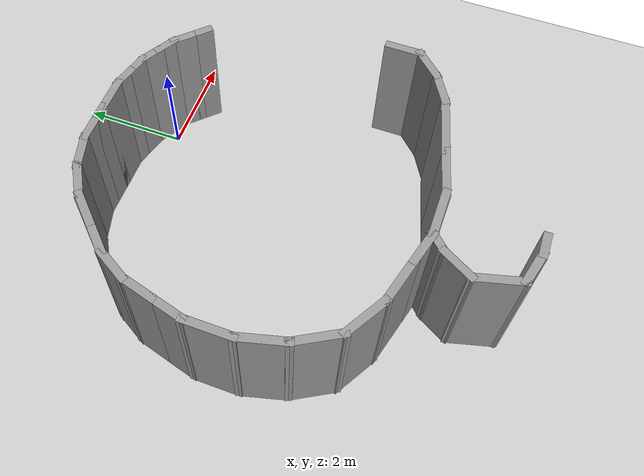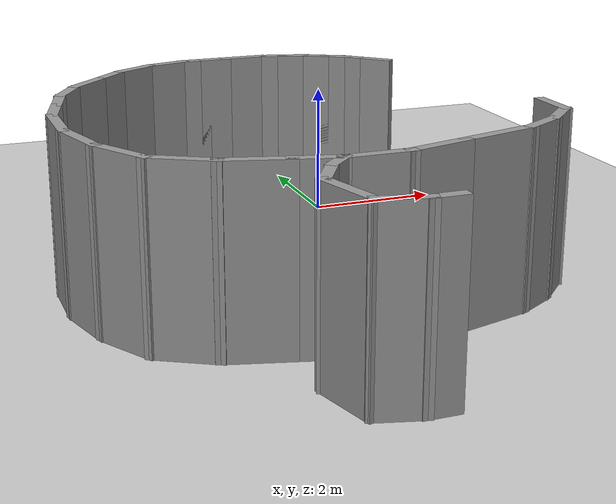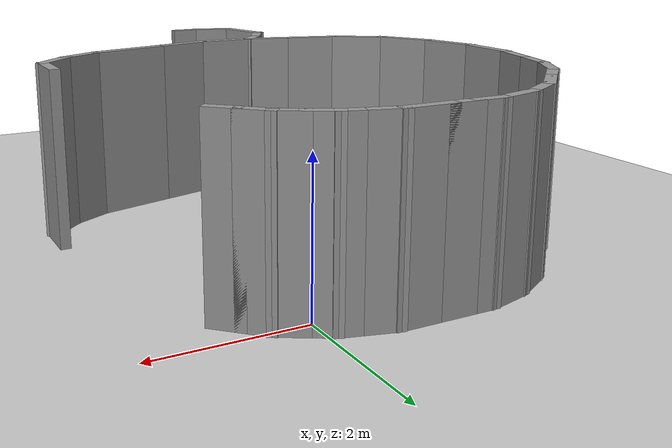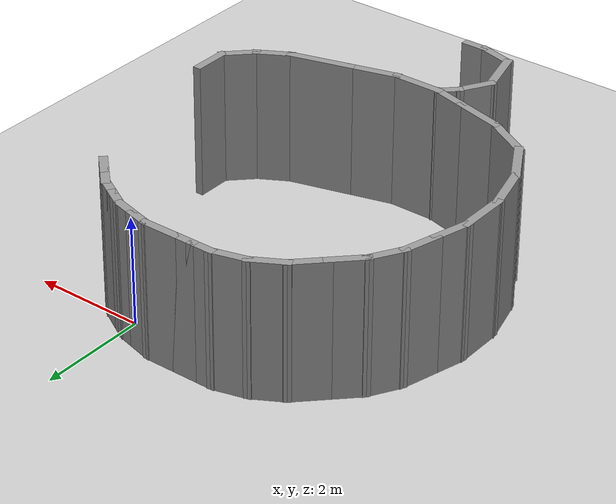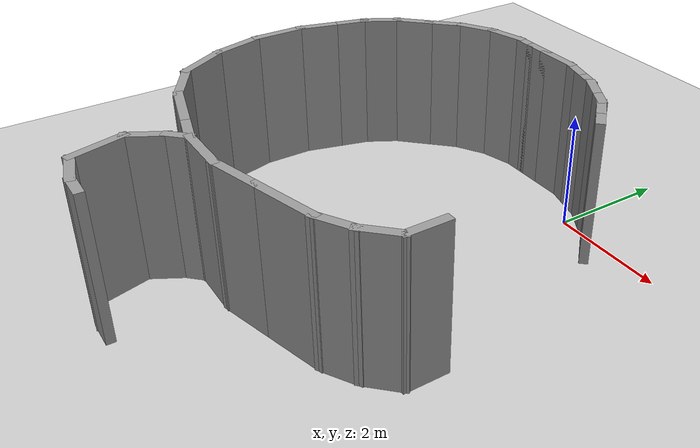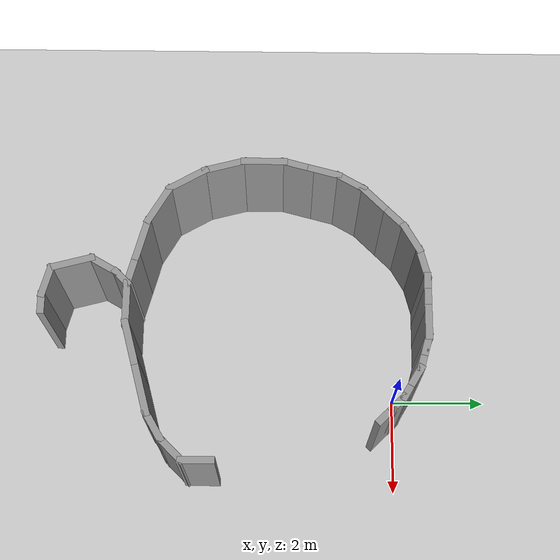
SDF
<?xml version="1.0" ?>
<sdf version="1.5">
  <world name="default">
    <!-- A global light source -->
    <include>
      <uri>model://sun</uri>
    </include>
    <!-- A ground plane -->
    <include>
      <uri>model://ground_plane</uri>
    </include>

    <include>
        <uri>model://walls</uri>
    </include>

    <physics name="ode_70iters" type="ode">
      <real_time_update_rate>1500</real_time_update_rate>
      <ode>
        <solver>
          <type>quick</type>
          <iters>70</iters>
        </solver>
      </ode>
    </physics>
  </world>
</sdf>

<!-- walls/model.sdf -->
<sdf version='1.7'>
  <model name='walls'>
    <pose>-1.4146 -3.41675 0 0 -0 0</pose>
    <link name='Wall_1'>
      <collision name='Wall_1_Collision'>
        <geometry>
          <box>
            <size>0.5 0.15 2.5</size>
          </box>
        </geometry>
        <pose>0 0 1.25 0 -0 0</pose>
      </collision>
      <visual name='Wall_1_Visual'>
        <pose>0 0 1.25 0 -0 0</pose>
        <geometry>
          <box>
            <size>0.5 0.15 2.5</size>
          </box>
        </geometry>
        <material>
          <script>
            <uri>file://media/materials/scripts/gazebo.material</uri>
            <name>Gazebo/Grey</name>
          </script>
          <ambient>1 1 1 1</ambient>
        </material>
        <meta>
          <layer>0</layer>
        </meta>
      </visual>
      <pose>-0.503396 3.96671 0 0 -0 0</pose>
    </link>
    <link name='Wall_11'>
      <collision name='Wall_11_Collision'>
        <geometry>
          <box>
            <size>0.75 0.15 2.5</size>
          </box>
        </geometry>
        <pose>0 0 1.25 0 -0 0</pose>
      </collision>
      <visual name='Wall_11_Visual'>
        <pose>0 0 1.25 0 -0 0</pose>
        <geometry>
          <box>
            <size>0.75 0.15 2.5</size>
          </box>
        </geometry>
        <material>
          <script>
            <uri>file://media/materials/scripts/gazebo.material</uri>
            <name>Gazebo/Grey</name>
          </script>
          <ambient>1 1 1 1</ambient>
        </material>
        <meta>
          <layer>0</layer>
        </meta>
      </visual>
      <pose>-0.968174 3.88907 0 0 -0 -2.87979</pose>
    </link>
    <link name='Wall_12'>
      <collision name='Wall_12_Collision'>
        <geometry>
          <box>
            <size>0.75 0.15 2.5</size>
          </box>
        </geometry>
        <pose>0 0 1.25 0 -0 0</pose>
      </collision>
      <visual name='Wall_12_Visual'>
        <pose>0 0 1.25 0 -0 0</pose>
        <geometry>
          <box>
            <size>0.75 0.15 2.5</size>
          </box>
        </geometry>
        <material>
          <script>
            <uri>file://media/materials/scripts/gazebo.material</uri>
            <name>Gazebo/Grey</name>
          </script>
          <ambient>1 1 1 1</ambient>
        </material>
        <meta>
          <layer>0</layer>
        </meta>
      </visual>
      <pose>-1.51776 3.66142 0 0 -0 -2.61799</pose>
    </link>
    <link name='Wall_13'>
      <collision name='Wall_13_Collision'>
        <geometry>
          <box>
            <size>0.75 0.15 2.5</size>
          </box>
        </geometry>
        <pose>0 0 1.25 0 -0 0</pose>
      </collision>
      <visual name='Wall_13_Visual'>
        <pose>0 0 1.25 0 -0 0</pose>
        <geometry>
          <box>
            <size>0.75 0.15 2.5</size>
          </box>
        </geometry>
        <material>
          <script>
            <uri>file://media/materials/scripts/gazebo.material</uri>
            <name>Gazebo/Grey</name>
          </script>
          <ambient>1 1 1 1</ambient>
        </material>
        <meta>
          <layer>0</layer>
        </meta>
      </visual>
      <pose>-1.9897 3.29929 0 0 -0 -2.35619</pose>
    </link>
    <link name='Wall_14'>
      <collision name='Wall_14_Collision'>
        <geometry>
          <box>
            <size>0.75 0.15 2.5</size>
          </box>
        </geometry>
        <pose>0 0 1.25 0 -0 0</pose>
      </collision>
      <visual name='Wall_14_Visual'>
        <pose>0 0 1.25 0 -0 0</pose>
        <geometry>
          <box>
            <size>0.75 0.15 2.5</size>
          </box>
        </geometry>
        <material>
          <script>
            <uri>file://media/materials/scripts/gazebo.material</uri>
            <name>Gazebo/Grey</name>
          </script>
          <ambient>1 1 1 1</ambient>
        </material>
        <meta>
          <layer>0</layer>
        </meta>
      </visual>
      <pose>-2.41396 2.87502 0 0 -0 -2.35619</pose>
    </link>
    <link name='Wall_15'>
      <collision name='Wall_15_Collision'>
        <geometry>
          <box>
            <size>0.75 0.15 2.5</size>
          </box>
        </geometry>
        <pose>0 0 1.25 0 -0 0</pose>
      </collision>
      <visual name='Wall_15_Visual'>
        <pose>0 0 1.25 0 -0 0</pose>
        <geometry>
          <box>
            <size>0.75 0.15 2.5</size>
          </box>
        </geometry>
        <material>
          <script>
            <uri>file://media/materials/scripts/gazebo.material</uri>
            <name>Gazebo/Grey</name>
          </script>
          <ambient>1 1 1 1</ambient>
        </material>
        <meta>
          <layer>0</layer>
        </meta>
      </visual>
      <pose>-2.7761 2.40308 0 0 -0 -2.0944</pose>
    </link>
    <link name='Wall_16'>
      <collision name='Wall_16_Collision'>
        <geometry>
          <box>
            <size>0.75 0.15 2.5</size>
          </box>
        </geometry>
        <pose>0 0 1.25 0 -0 0</pose>
      </collision>
      <visual name='Wall_16_Visual'>
        <pose>0 0 1.25 0 -0 0</pose>
        <geometry>
          <box>
            <size>0.75 0.15 2.5</size>
          </box>
        </geometry>
        <material>
          <script>
            <uri>file://media/materials/scripts/gazebo.material</uri>
            <name>Gazebo/Grey</name>
          </script>
          <ambient>1 1 1 1</ambient>
        </material>
        <meta>
          <layer>0</layer>
        </meta>
      </visual>
      <pose>-3.00374 1.8535 0 0 -0 -1.8326</pose>
    </link>
    <link name='Wall_17'>
      <collision name='Wall_17_Collision'>
        <geometry>
          <box>
            <size>0.75 0.15 2.5</size>
          </box>
        </geometry>
        <pose>0 0 1.25 0 -0 0</pose>
      </collision>
      <visual name='Wall_17_Visual'>
        <pose>0 0 1.25 0 -0 0</pose>
        <geometry>
          <box>
            <size>0.75 0.15 2.5</size>
          </box>
        </geometry>
        <material>
          <script>
            <uri>file://media/materials/scripts/gazebo.material</uri>
            <name>Gazebo/Grey</name>
          </script>
          <ambient>1 1 1 1</ambient>
        </material>
        <meta>
          <layer>0</layer>
        </meta>
      </visual>
      <pose>-3.15903 1.27394 0 0 -0 -1.8326</pose>
    </link>
    <link name='Wall_18'>
      <collision name='Wall_18_Collision'>
        <geometry>
          <box>
            <size>1 0.15 2.5</size>
          </box>
        </geometry>
        <pose>0 0 1.25 0 -0 0</pose>
      </collision>
      <visual name='Wall_18_Visual'>
        <pose>0 0 1.25 0 -0 0</pose>
        <geometry>
          <box>
            <size>1 0.15 2.5</size>
          </box>
        </geometry>
        <material>
          <script>
            <uri>file://media/materials/scripts/gazebo.material</uri>
            <name>Gazebo/Grey</name>
          </script>
          <ambient>1 1 1 1</ambient>
        </material>
        <meta>
          <layer>0</layer>
        </meta>
      </visual>
      <pose>-3.23668 0.559166 0 0 -0 -1.5708</pose>
    </link>
    <link name='Wall_19'>
      <collision name='Wall_19_Collision'>
        <geometry>
          <box>
            <size>1 0.15 2.5</size>
          </box>
        </geometry>
        <pose>0 0 1.25 0 -0 0</pose>
      </collision>
      <visual name='Wall_19_Visual'>
        <pose>0 0 1.25 0 -0 0</pose>
        <geometry>
          <box>
            <size>1 0.15 2.5</size>
          </box>
        </geometry>
        <material>
          <script>
            <uri>file://media/materials/scripts/gazebo.material</uri>
            <name>Gazebo/Grey</name>
          </script>
          <ambient>1 1 1 1</ambient>
        </material>
        <meta>
          <layer>0</layer>
        </meta>
      </visual>
      <pose>-3.12668 -0.276353 0 0 -0 -1.309</pose>
    </link>
    <link name='Wall_2'>
      <collision name='Wall_2_Collision'>
        <geometry>
          <box>
            <size>0.5 0.15 2.5</size>
          </box>
        </geometry>
        <pose>0 0 1.25 0 -0 0</pose>
      </collision>
      <visual name='Wall_2_Visual'>
        <pose>0 0 1.25 0 -0 0</pose>
        <geometry>
          <box>
            <size>0.5 0.15 2.5</size>
          </box>
        </geometry>
        <material>
          <script>
            <uri>file://media/materials/scripts/gazebo.material</uri>
            <name>Gazebo/Grey</name>
          </script>
          <ambient>1 1 1 1</ambient>
        </material>
        <meta>
          <layer>0</layer>
        </meta>
      </visual>
      <pose>-0.153396 3.96671 0 0 -0 0</pose>
    </link>
    <link name='Wall_20'>
      <collision name='Wall_20_Collision'>
        <geometry>
          <box>
            <size>1 0.15 2.5</size>
          </box>
        </geometry>
        <pose>0 0 1.25 0 -0 0</pose>
      </collision>
      <visual name='Wall_20_Visual'>
        <pose>0 0 1.25 0 -0 0</pose>
        <geometry>
          <box>
            <size>1 0.15 2.5</size>
          </box>
        </geometry>
        <material>
          <script>
            <uri>file://media/materials/scripts/gazebo.material</uri>
            <name>Gazebo/Grey</name>
          </script>
          <ambient>1 1 1 1</ambient>
        </material>
        <meta>
          <layer>0</layer>
        </meta>
      </visual>
      <pose>-2.80418 -1.05493 0 0 -0 -1.0472</pose>
    </link>
    <link name='Wall_21'>
      <collision name='Wall_21_Collision'>
        <geometry>
          <box>
            <size>1 0.15 2.5</size>
          </box>
        </geometry>
        <pose>0 0 1.25 0 -0 0</pose>
      </collision>
      <visual name='Wall_21_Visual'>
        <pose>0 0 1.25 0 -0 0</pose>
        <geometry>
          <box>
            <size>1 0.15 2.5</size>
          </box>
        </geometry>
        <material>
          <script>
            <uri>file://media/materials/scripts/gazebo.material</uri>
            <name>Gazebo/Grey</name>
          </script>
          <ambient>1 1 1 1</ambient>
        </material>
        <meta>
          <layer>0</layer>
        </meta>
      </visual>
      <pose>-2.22362 -1.63549 0 0 -0 -0.523599</pose>
    </link>
    <link name='Wall_22'>
      <collision name='Wall_22_Collision'>
        <geometry>
          <box>
            <size>1 0.15 2.5</size>
          </box>
        </geometry>
        <pose>0 0 1.25 0 -0 0</pose>
      </collision>
      <visual name='Wall_22_Visual'>
        <pose>0 0 1.25 0 -0 0</pose>
        <geometry>
          <box>
            <size>1 0.15 2.5</size>
          </box>
        </geometry>
        <material>
          <script>
            <uri>file://media/materials/scripts/gazebo.material</uri>
            <name>Gazebo/Grey</name>
          </script>
          <ambient>1 1 1 1</ambient>
        </material>
        <meta>
          <layer>0</layer>
        </meta>
      </visual>
      <pose>-1.44504 -1.95799 0 0 -0 -0.261799</pose>
    </link>
    <link name='Wall_23'>
      <collision name='Wall_23_Collision'>
        <geometry>
          <box>
            <size>0.75 0.15 2.5</size>
          </box>
        </geometry>
        <pose>0 0 1.25 0 -0 0</pose>
      </collision>
      <visual name='Wall_23_Visual'>
        <pose>0 0 1.25 0 -0 0</pose>
        <geometry>
          <box>
            <size>0.75 0.15 2.5</size>
          </box>
        </geometry>
        <material>
          <script>
            <uri>file://media/materials/scripts/gazebo.material</uri>
            <name>Gazebo/Grey</name>
          </script>
          <ambient>1 1 1 1</ambient>
        </material>
        <meta>
          <layer>0</layer>
        </meta>
      </visual>
      <pose>-0.744745 -2.14563 0 0 -0 -0.261799</pose>
    </link>
    <link name='Wall_24'>
      <collision name='Wall_24_Collision'>
        <geometry>
          <box>
            <size>1 0.15 2.5</size>
          </box>
        </geometry>
        <pose>0 0 1.25 0 -0 0</pose>
      </collision>
      <visual name='Wall_24_Visual'>
        <pose>0 0 1.25 0 -0 0</pose>
        <geometry>
          <box>
            <size>1 0.15 2.5</size>
          </box>
        </geometry>
        <material>
          <script>
            <uri>file://media/materials/scripts/gazebo.material</uri>
            <name>Gazebo/Grey</name>
          </script>
          <ambient>1 1 1 1</ambient>
        </material>
        <meta>
          <layer>0</layer>
        </meta>
      </visual>
      <pose>-0.029967 -2.22328 0 0 -0 0</pose>
    </link>
    <link name='Wall_25'>
      <collision name='Wall_25_Collision'>
        <geometry>
          <box>
            <size>1 0.15 2.5</size>
          </box>
        </geometry>
        <pose>0 0 1.25 0 -0 0</pose>
      </collision>
      <visual name='Wall_25_Visual'>
        <pose>0 0 1.25 0 -0 0</pose>
        <geometry>
          <box>
            <size>1 0.15 2.5</size>
          </box>
        </geometry>
        <material>
          <script>
            <uri>file://media/materials/scripts/gazebo.material</uri>
            <name>Gazebo/Grey</name>
          </script>
          <ambient>1 1 1 1</ambient>
        </material>
        <meta>
          <layer>0</layer>
        </meta>
      </visual>
      <pose>0.805551 -2.11328 0 0 -0 0.261799</pose>
    </link>
    <link name='Wall_26'>
      <collision name='Wall_26_Collision'>
        <geometry>
          <box>
            <size>1.25 0.15 2.5</size>
          </box>
        </geometry>
        <pose>0 0 1.25 0 -0 0</pose>
      </collision>
      <visual name='Wall_26_Visual'>
        <pose>0 0 1.25 0 -0 0</pose>
        <geometry>
          <box>
            <size>1.25 0.15 2.5</size>
          </box>
        </geometry>
        <material>
          <script>
            <uri>file://media/materials/scripts/gazebo.material</uri>
            <name>Gazebo/Grey</name>
          </script>
          <ambient>1 1 1 1</ambient>
        </material>
        <meta>
          <layer>0</layer>
        </meta>
      </visual>
      <pose>1.74733 -1.86093 0 0 -0 0.261799</pose>
    </link>
    <link name='Wall_27'>
      <collision name='Wall_27_Collision'>
        <geometry>
          <box>
            <size>0.75 0.15 2.5</size>
          </box>
        </geometry>
        <pose>0 0 1.25 0 -0 0</pose>
      </collision>
      <visual name='Wall_27_Visual'>
        <pose>0 0 1.25 0 -0 0</pose>
        <geometry>
          <box>
            <size>0.75 0.15 2.5</size>
          </box>
        </geometry>
        <material>
          <script>
            <uri>file://media/materials/scripts/gazebo.material</uri>
            <name>Gazebo/Grey</name>
          </script>
          <ambient>1 1 1 1</ambient>
        </material>
        <meta>
          <layer>0</layer>
        </meta>
      </visual>
      <pose>2.5384 -1.56858 0 0 -0 0.523599</pose>
    </link>
    <link name='Wall_28'>
      <collision name='Wall_28_Collision'>
        <geometry>
          <box>
            <size>0.75 0.15 2.5</size>
          </box>
        </geometry>
        <pose>0 0 1.25 0 -0 0</pose>
      </collision>
      <visual name='Wall_28_Visual'>
        <pose>0 0 1.25 0 -0 0</pose>
        <geometry>
          <box>
            <size>0.75 0.15 2.5</size>
          </box>
        </geometry>
        <material>
          <script>
            <uri>file://media/materials/scripts/gazebo.material</uri>
            <name>Gazebo/Grey</name>
          </script>
          <ambient>1 1 1 1</ambient>
        </material>
        <meta>
          <layer>0</layer>
        </meta>
      </visual>
      <pose>3.01033 -1.20645 0 0 -0 0.785398</pose>
    </link>
    <link name='Wall_29'>
      <collision name='Wall_29_Collision'>
        <geometry>
          <box>
            <size>0.75 0.15 2.5</size>
          </box>
        </geometry>
        <pose>0 0 1.25 0 -0 0</pose>
      </collision>
      <visual name='Wall_29_Visual'>
        <pose>0 0 1.25 0 -0 0</pose>
        <geometry>
          <box>
            <size>0.75 0.15 2.5</size>
          </box>
        </geometry>
        <material>
          <script>
            <uri>file://media/materials/scripts/gazebo.material</uri>
            <name>Gazebo/Grey</name>
          </script>
          <ambient>1 1 1 1</ambient>
        </material>
        <meta>
          <layer>0</layer>
        </meta>
      </visual>
      <pose>3.22247 -0.694319 0 0 -0 1.5708</pose>
    </link>
    <link name='Wall_3'>
      <collision name='Wall_3_Collision'>
        <geometry>
          <box>
            <size>0.75 0.15 2.5</size>
          </box>
        </geometry>
        <pose>0 0 1.25 0 -0 0</pose>
      </collision>
      <visual name='Wall_3_Visual'>
        <pose>0 0 1.25 0 -0 0</pose>
        <geometry>
          <box>
            <size>0.75 0.15 2.5</size>
          </box>
        </geometry>
        <material>
          <script>
            <uri>file://media/materials/scripts/gazebo.material</uri>
            <name>Gazebo/Grey</name>
          </script>
          <ambient>1 1 1 1</ambient>
        </material>
        <meta>
          <layer>0</layer>
        </meta>
      </visual>
      <pose>0.321604 3.96671 0 0 -0 0</pose>
    </link>
    <link name='Wall_31'>
      <collision name='Wall_31_Collision'>
        <geometry>
          <box>
            <size>0.5 0.15 2.5</size>
          </box>
        </geometry>
        <pose>0 0 1.25 0 -0 0</pose>
      </collision>
      <visual name='Wall_31_Visual'>
        <pose>0 0 1.25 0 -0 0</pose>
        <geometry>
          <box>
            <size>0.5 0.15 2.5</size>
          </box>
        </geometry>
        <material>
          <script>
            <uri>file://media/materials/scripts/gazebo.material</uri>
            <name>Gazebo/Grey</name>
          </script>
          <ambient>1 1 1 1</ambient>
        </material>
        <meta>
          <layer>0</layer>
        </meta>
      </visual>
      <pose>-0.578711 -2.34702 0 0 -0 -2.35619</pose>
    </link>
    <link name='Wall_32'>
      <collision name='Wall_32_Collision'>
        <geometry>
          <box>
            <size>0.75 0.15 2.5</size>
          </box>
        </geometry>
        <pose>0 0 1.25 0 -0 0</pose>
      </collision>
      <visual name='Wall_32_Visual'>
        <pose>0 0 1.25 0 -0 0</pose>
        <geometry>
          <box>
            <size>0.75 0.15 2.5</size>
          </box>
        </geometry>
        <material>
          <script>
            <uri>file://media/materials/scripts/gazebo.material</uri>
            <name>Gazebo/Grey</name>
          </script>
          <ambient>1 1 1 1</ambient>
        </material>
        <meta>
          <layer>0</layer>
        </meta>
      </visual>
      <pose>-0.852454 -2.73057 0 0 -0 -2.0944</pose>
    </link>
    <link name='Wall_33'>
      <collision name='Wall_33_Collision'>
        <geometry>
          <box>
            <size>1 0.15 2.5</size>
          </box>
        </geometry>
        <pose>0 0 1.25 0 -0 0</pose>
      </collision>
      <visual name='Wall_33_Visual'>
        <pose>0 0 1.25 0 -0 0</pose>
        <geometry>
          <box>
            <size>1 0.15 2.5</size>
          </box>
        </geometry>
        <material>
          <script>
            <uri>file://media/materials/scripts/gazebo.material</uri>
            <name>Gazebo/Grey</name>
          </script>
          <ambient>1 1 1 1</ambient>
        </material>
        <meta>
          <layer>0</layer>
        </meta>
      </visual>
      <pose>-0.892457 -3.4009 0 0 -0 -1.309</pose>
    </link>
    <link name='Wall_34'>
      <collision name='Wall_34_Collision'>
        <geometry>
          <box>
            <size>0.75 0.15 2.5</size>
          </box>
        </geometry>
        <pose>0 0 1.25 0 -0 0</pose>
      </collision>
      <visual name='Wall_34_Visual'>
        <pose>0 0 1.25 0 -0 0</pose>
        <geometry>
          <box>
            <size>0.75 0.15 2.5</size>
          </box>
        </geometry>
        <material>
          <script>
            <uri>file://media/materials/scripts/gazebo.material</uri>
            <name>Gazebo/Grey</name>
          </script>
          <ambient>1 1 1 1</ambient>
        </material>
        <meta>
          <layer>0</layer>
        </meta>
      </visual>
      <pose>-0.492681 -3.88907 0 0 -0 -0.261799</pose>
    </link>
    <link name='Wall_35'>
      <collision name='Wall_35_Collision'>
        <geometry>
          <box>
            <size>0.5 0.15 2.5</size>
          </box>
        </geometry>
        <pose>0 0 1.25 0 -0 0</pose>
      </collision>
      <visual name='Wall_35_Visual'>
        <pose>0 0 1.25 0 -0 0</pose>
        <geometry>
          <box>
            <size>0.5 0.15 2.5</size>
          </box>
        </geometry>
        <material>
          <script>
            <uri>file://media/materials/scripts/gazebo.material</uri>
            <name>Gazebo/Grey</name>
          </script>
          <ambient>1 1 1 1</ambient>
        </material>
        <meta>
          <layer>0</layer>
        </meta>
      </visual>
      <pose>-0.027903 -3.96671 0 0 -0 0</pose>
    </link>
    <link name='Wall_4'>
      <collision name='Wall_4_Collision'>
        <geometry>
          <box>
            <size>0.5 0.15 2.5</size>
          </box>
        </geometry>
        <pose>0 0 1.25 0 -0 0</pose>
      </collision>
      <visual name='Wall_4_Visual'>
        <pose>0 0 1.25 0 -0 0</pose>
        <geometry>
          <box>
            <size>0.5 0.15 2.5</size>
          </box>
        </geometry>
        <material>
          <script>
            <uri>file://media/materials/scripts/gazebo.material</uri>
            <name>Gazebo/Grey</name>
          </script>
          <ambient>1 1 1 1</ambient>
        </material>
        <meta>
          <layer>0</layer>
        </meta>
      </visual>
      <pose>0.790641 3.92142 0 0 -0 -0.261799</pose>
    </link>
    <link name='Wall_5'>
      <collision name='Wall_5_Collision'>
        <geometry>
          <box>
            <size>0.5 0.15 2.5</size>
          </box>
        </geometry>
        <pose>0 0 1.25 0 -0 0</pose>
      </collision>
      <visual name='Wall_5_Visual'>
        <pose>0 0 1.25 0 -0 0</pose>
        <geometry>
          <box>
            <size>0.5 0.15 2.5</size>
          </box>
        </geometry>
        <material>
          <script>
            <uri>file://media/materials/scripts/gazebo.material</uri>
            <name>Gazebo/Grey</name>
          </script>
          <ambient>1 1 1 1</ambient>
        </material>
        <meta>
          <layer>0</layer>
        </meta>
      </visual>
      <pose>1.12871 3.83083 0 0 -0 -0.261799</pose>
    </link>
    <link name='Wall_6'>
      <collision name='Wall_6_Collision'>
        <geometry>
          <box>
            <size>0.5 0.15 2.5</size>
          </box>
        </geometry>
        <pose>0 0 1.25 0 -0 0</pose>
      </collision>
      <visual name='Wall_6_Visual'>
        <pose>0 0 1.25 0 -0 0</pose>
        <geometry>
          <box>
            <size>0.5 0.15 2.5</size>
          </box>
        </geometry>
        <material>
          <script>
            <uri>file://media/materials/scripts/gazebo.material</uri>
            <name>Gazebo/Grey</name>
          </script>
          <ambient>1 1 1 1</ambient>
        </material>
        <meta>
          <layer>0</layer>
        </meta>
      </visual>
      <pose>1.44931 3.69804 0 0 -0 -0.523599</pose>
    </link>
    <link name='Wall_7'>
      <collision name='Wall_7_Collision'>
        <geometry>
          <box>
            <size>0.5 0.15 2.5</size>
          </box>
        </geometry>
        <pose>0 0 1.25 0 -0 0</pose>
      </collision>
      <visual name='Wall_7_Visual'>
        <pose>0 0 1.25 0 -0 0</pose>
        <geometry>
          <box>
            <size>0.5 0.15 2.5</size>
          </box>
        </geometry>
        <material>
          <script>
            <uri>file://media/materials/scripts/gazebo.material</uri>
            <name>Gazebo/Grey</name>
          </script>
          <ambient>1 1 1 1</ambient>
        </material>
        <meta>
          <layer>0</layer>
        </meta>
      </visual>
      <pose>1.75242 3.52304 0 0 -0 -0.523599</pose>
    </link>
    <link name='Wall_8'>
      <collision name='Wall_8_Collision'>
        <geometry>
          <box>
            <size>0.5 0.15 2.5</size>
          </box>
        </geometry>
        <pose>0 0 1.25 0 -0 0</pose>
      </collision>
      <visual name='Wall_8_Visual'>
        <pose>0 0 1.25 0 -0 0</pose>
        <geometry>
          <box>
            <size>0.5 0.15 2.5</size>
          </box>
        </geometry>
        <material>
          <script>
            <uri>file://media/materials/scripts/gazebo.material</uri>
            <name>Gazebo/Grey</name>
          </script>
          <ambient>1 1 1 1</ambient>
        </material>
        <meta>
          <layer>0</layer>
        </meta>
      </visual>
      <pose>2.02771 3.3118 0 0 -0 -0.785398</pose>
    </link>
    <link name='Wall_9'>
      <collision name='Wall_9_Collision'>
        <geometry>
          <box>
            <size>0.5 0.15 2.5</size>
          </box>
        </geometry>
        <pose>0 0 1.25 0 -0 0</pose>
      </collision>
      <visual name='Wall_9_Visual'>
        <pose>0 0 1.25 0 -0 0</pose>
        <geometry>
          <box>
            <size>0.5 0.15 2.5</size>
          </box>
        </geometry>
        <material>
          <script>
            <uri>file://media/materials/scripts/gazebo.material</uri>
            <name>Gazebo/Grey</name>
          </script>
          <ambient>1 1 1 1</ambient>
        </material>
        <meta>
          <layer>0</layer>
        </meta>
      </visual>
      <pose>2.2752 3.06431 0 0 -0 -0.785398</pose>
    </link>
    <static>1</static>
  </model>
</sdf>
